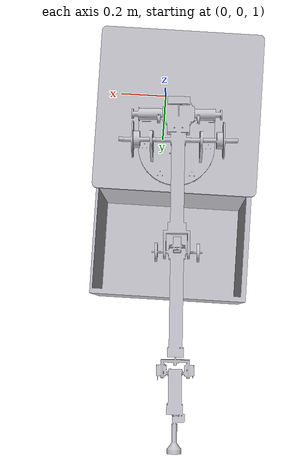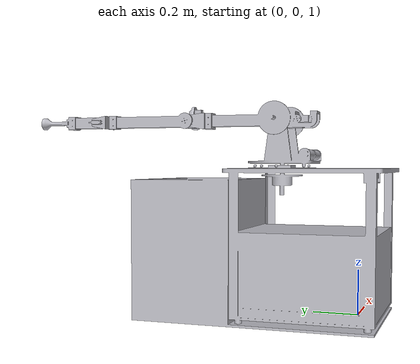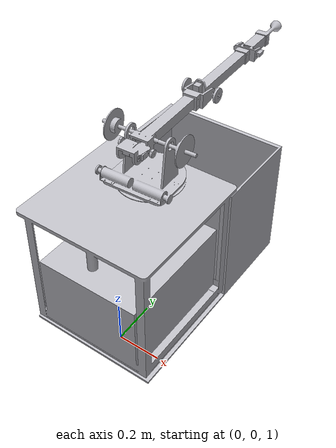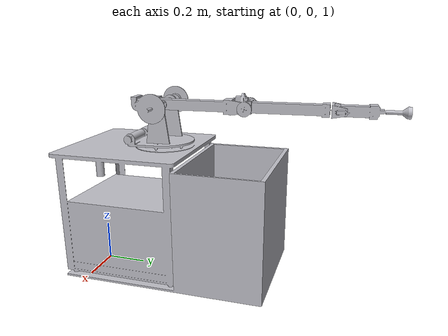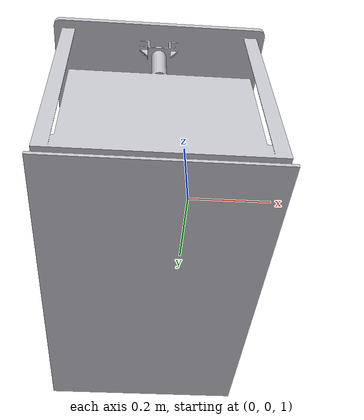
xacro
<?xml version="1.0" ?>
<robot name="ARM" xmlns:xacro="http://www.ros.org/wiki/xacro">

<xacro:include filename="$(find ARM_description)/urdf/materials.xacro" />
<xacro:include filename="$(find ARM_description)/urdf/ARM.trans" />
<xacro:include filename="$(find ARM_description)/urdf/ARM.gazebo" />
<link name="base_link">
  <inertial>
    <origin xyz="-0.0943192644700731 0.6324939187407336 1.2300335636796926" rpy="0 0 0"/>
    <mass value="17.972639999999924"/>
    <inertia ixx="1.833137" iyy="1.542102" izz="1.955592" ixy="0.030245" iyz="-0.287683" ixz="0.030749"/>
  </inertial>
  <visual>
    <origin xyz="0 0 0" rpy="0 0 0"/>
    <geometry>
      <mesh filename="package://ARM_description/meshes/base_link.stl" scale="0.001 0.001 0.001"/>
    </geometry>
    <material name="silver"/>
  </visual>
  <collision>
    <origin xyz="0 0 0" rpy="0 0 0"/>
    <geometry>
      <mesh filename="package://ARM_description/meshes/base_link.stl" scale="0.001 0.001 0.001"/>
    </geometry>
  </collision>
</link>

<link name="foundation__base_1">
  <inertial>
    <origin xyz="-0.0018870401351480243 0.0011126603112967537 0.22948417314037695" rpy="0 0 0"/>
    <mass value="920.5891115290578"/>
    <inertia ixx="49.008853" iyy="41.326946" izz="48.583423" ixy="0.000676" iyz="0.059387" ixz="-0.042227"/>
  </inertial>
  <visual>
    <origin xyz="0.069502 -0.180301 -0.998971" rpy="0 0 0"/>
    <geometry>
      <mesh filename="package://ARM_description/meshes/foundation__base_1.stl" scale="0.001 0.001 0.001"/>
    </geometry>
    <material name="silver"/>
  </visual>
  <collision>
    <origin xyz="0.069502 -0.180301 -0.998971" rpy="0 0 0"/>
    <geometry>
      <mesh filename="package://ARM_description/meshes/foundation__base_1.stl" scale="0.001 0.001 0.001"/>
    </geometry>
  </collision>
</link>

<link name="foundation_fork_1">
  <inertial>
    <origin xyz="0.01203063625955944 -0.7762383950072915 -0.20101382259554024" rpy="0 0 0"/>
    <mass value="2.104746277879827"/>
    <inertia ixx="0.018556" iyy="0.020959" izz="0.025011" ixy="-0.000116" iyz="0.001413" ixz="-6.6e-05"/>
  </inertial>
  <visual>
    <origin xyz="0.08002 -1.072948 -1.882011" rpy="0 0 0"/>
    <geometry>
      <mesh filename="package://ARM_description/meshes/foundation_fork_1.stl" scale="0.001 0.001 0.001"/>
    </geometry>
    <material name="silver"/>
  </visual>
  <collision>
    <origin xyz="0.08002 -1.072948 -1.882011" rpy="0 0 0"/>
    <geometry>
      <mesh filename="package://ARM_description/meshes/foundation_fork_1.stl" scale="0.001 0.001 0.001"/>
    </geometry>
  </collision>
</link>

<link name="forearm_1">
  <inertial>
    <origin xyz="-0.09916108196856231 0.044701985304532454 -0.0004329499526189995" rpy="0 0 0"/>
    <mass value="1.1768759803243096"/>
    <inertia ixx="0.036476" iyy="0.011213" izz="0.046655" ixy="0.001166" iyz="-3.2e-05" ixz="1e-06"/>
  </inertial>
  <visual>
    <origin xyz="-0.020403 -0.334441 -1.858971" rpy="0 0 0"/>
    <geometry>
      <mesh filename="package://ARM_description/meshes/forearm_1.stl" scale="0.001 0.001 0.001"/>
    </geometry>
    <material name="silver"/>
  </visual>
  <collision>
    <origin xyz="-0.020403 -0.334441 -1.858971" rpy="0 0 0"/>
    <geometry>
      <mesh filename="package://ARM_description/meshes/forearm_1.stl" scale="0.001 0.001 0.001"/>
    </geometry>
  </collision>
</link>

<link name="hand_fork_1">
  <inertial>
    <origin xyz="0.15286733204406416 -0.8018817859326866 -1.8339702634743285" rpy="0 0 0"/>
    <mass value="0.1951503912229445"/>
    <inertia ixx="0.000118" iyy="0.000407" izz="0.000457" ixy="-1.3e-05" iyz="0.0" ixz="1e-06"/>
  </inertial>
  <visual>
    <origin xyz="0.270261 -1.980123 -3.692941" rpy="0 0 0"/>
    <geometry>
      <mesh filename="package://ARM_description/meshes/hand_fork_1.stl" scale="0.001 0.001 0.001"/>
    </geometry>
    <material name="silver"/>
  </visual>
  <collision>
    <origin xyz="0.270261 -1.980123 -3.692941" rpy="0 0 0"/>
    <geometry>
      <mesh filename="package://ARM_description/meshes/hand_fork_1.stl" scale="0.001 0.001 0.001"/>
    </geometry>
  </collision>
</link>

<link name="hand_1">
  <inertial>
    <origin xyz="1.6334270761926517 1.4353654409365944 -0.04610029978628982" rpy="0 0 0"/>
    <mass value="0.39305569098005755"/>
    <inertia ixx="0.008981" iyy="0.00079" izz="0.00939" ixy="0.000378" iyz="0.000236" ixz="-1.1e-05"/>
  </inertial>
  <visual>
    <origin xyz="1.734856 0.603817 -1.910738" rpy="0 0 0"/>
    <geometry>
      <mesh filename="package://ARM_description/meshes/hand_1.stl" scale="0.001 0.001 0.001"/>
    </geometry>
    <material name="silver"/>
  </visual>
  <collision>
    <origin xyz="1.734856 0.603817 -1.910738" rpy="0 0 0"/>
    <geometry>
      <mesh filename="package://ARM_description/meshes/hand_1.stl" scale="0.001 0.001 0.001"/>
    </geometry>
  </collision>
</link>

<link name="end_effector_1">
  <inertial>
    <origin xyz="-0.035464288776805644 0.1832519688023635 4.18455210566826e-05" rpy="0 0 0"/>
    <mass value="0.5354810781353946"/>
    <inertia ixx="0.003594" iyy="0.000283" izz="0.003616" ixy="0.00013" iyz="0.0" ixz="0.0"/>
  </inertial>
  <visual>
    <origin xyz="0.0936 -1.205018 -1.858932" rpy="0 0 0"/>
    <geometry>
      <mesh filename="package://ARM_description/meshes/end_effector_1.stl" scale="0.001 0.001 0.001"/>
    </geometry>
    <material name="silver"/>
  </visual>
  <collision>
    <origin xyz="0.0936 -1.205018 -1.858932" rpy="0 0 0"/>
    <geometry>
      <mesh filename="package://ARM_description/meshes/end_effector_1.stl" scale="0.001 0.001 0.001"/>
    </geometry>
  </collision>
</link>

<joint name="rigid_1" type="fixed">
  <origin xyz="-0.069502 0.180301 0.998971" rpy="0 0 0"/>
  <parent link="base_link"/>
  <child link="foundation__base_1"/>
</joint>

<joint name="revolute_1" type="continuous">
  <origin xyz="-0.010518 0.892647 0.88304" rpy="0 0 0"/>
  <parent link="foundation__base_1"/>
  <child link="foundation_fork_1"/>
  <axis xyz="-0.0 -0.0 1.0"/>
</joint>

<joint name="revolute_2" type="continuous">
  <origin xyz="0.100423 -0.738507 -0.02304" rpy="0 0 0"/>
  <parent link="foundation_fork_1"/>
  <child link="forearm_1"/>
  <axis xyz="-0.998941 -0.046 0.0"/>
</joint>

<joint name="revolute_3" type="continuous">
  <origin xyz="1.464595 2.58394 1.782203" rpy="0 0 0"/>
  <parent link="hand_1"/>
  <child link="hand_fork_1"/>
  <axis xyz="0.046 -0.998941 -0.0"/>
</joint>

<joint name="revolute_4" type="continuous">
  <origin xyz="-1.755259 -0.938258 0.051767" rpy="0 0 0"/>
  <parent link="forearm_1"/>
  <child link="hand_1"/>
  <axis xyz="-0.998941 -0.046 0.0"/>
</joint>

<joint name="revolute_5" type="continuous">
  <origin xyz="0.176661 -0.775105 -1.834009" rpy="0 0 0"/>
  <parent link="hand_fork_1"/>
  <child link="end_effector_1"/>
  <axis xyz="-0.99894 -0.046 0.001551"/>
</joint>

</robot>

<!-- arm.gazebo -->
<robot name="ARM" xmlns:xacro="http://www.ros.org/wiki/xacro" >

<xacro:property name="body_color" value="Gazebo/Silver" />

<gazebo>
  <plugin name="control" filename="libgazebo_ros_control.so"/>
</gazebo>
<gazebo reference="base_link">
  <material>${body_color}</material>
  <mu1>0.2</mu1>
  <mu2>0.2</mu2>
  <selfCollide>true</selfCollide>
  <gravity>true</gravity>
</gazebo>

<gazebo reference="foundation__base_1">
  <material>${body_color}</material>
  <mu1>0.2</mu1>
  <mu2>0.2</mu2>
  <selfCollide>true</selfCollide>
</gazebo>

<gazebo reference="foundation_fork_1">
  <material>${body_color}</material>
  <mu1>0.2</mu1>
  <mu2>0.2</mu2>
  <selfCollide>true</selfCollide>
</gazebo>

<gazebo reference="forearm_1">
  <material>${body_color}</material>
  <mu1>0.2</mu1>
  <mu2>0.2</mu2>
  <selfCollide>true</selfCollide>
</gazebo>

<gazebo reference="hand_fork_1">
  <material>${body_color}</material>
  <mu1>0.2</mu1>
  <mu2>0.2</mu2>
  <selfCollide>true</selfCollide>
</gazebo>

<gazebo reference="hand_1">
  <material>${body_color}</material>
  <mu1>0.2</mu1>
  <mu2>0.2</mu2>
  <selfCollide>true</selfCollide>
</gazebo>

<gazebo reference="end_effector_1">
  <material>${body_color}</material>
  <mu1>0.2</mu1>
  <mu2>0.2</mu2>
  <selfCollide>true</selfCollide>
</gazebo>

</robot>
